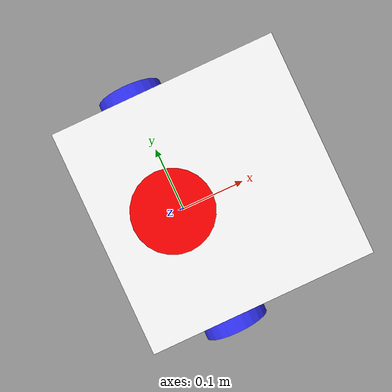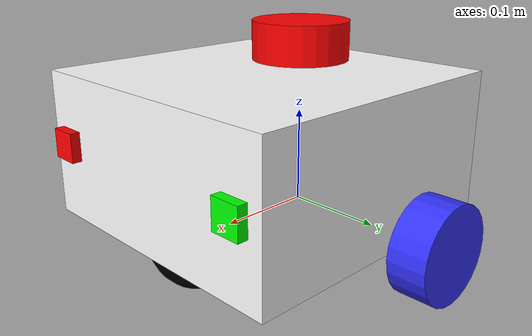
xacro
<?xml version="1.0"?>
<robot xmlns:xacro="http://www.ros.org/wiki/xacro"  name="robot">

    <xacro:arg name="use_ros2_control" default="true" />
    <xacro:arg name="gpu" default="false"/>
    <xacro:property name="gpu" value="$(arg gpu)" />

    <!-- CHASSIS AND WHEELS -->
    <xacro:include filename="robot_core.xacro" />

    <!-- LiDAR-->
    <xacro:include filename="lidar.xacro" />

    <!-- CAMERA -->
    <xacro:include filename="camera.xacro" />

    <!-- CONTROL -->

    <xacro:if value="$(arg use_ros2_control)" >
        <xacro:include filename="ros2_control.xacro" />
    </xacro:if>

    <xacro:unless value="$(arg use_ros2_control)" >
        <xacro:include filename="gazebo_control.xacro" />
    </xacro:unless>

</robot>

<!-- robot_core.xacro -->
<robot xmlns:xacro="http://www.ros.org/wiki/xacro">

    <xacro:include filename="materials.xacro" />
    <xacro:include filename="inertial_macros.xacro" />

    <!-- BASE LINK -->

    <link name="base_link">

    </link>

    <joint name="base_footprint_joint" type="fixed">
        <parent link="base_link" />
        <child link="base_footprint" />
        <origin xyz="0 0 0" rpy="0 0 0" />
    </joint>

    <link name="base_footprint">

    </link>

    <!-- CHASSIS LINK -->

    <joint name="chassis_joint" type="fixed" >
        <parent link="base_link" />
        <child link="chassis_link" />
        <origin xyz="-0.1 0 0" />
    </joint>

    <link name="chassis_link">
        <visual>
            <origin xyz="0.15 0 0.075" />
            <geometry>
                <box size="0.3 0.3 0.15" />
            </geometry>
            <material name="white" />
        </visual>
        <collision>
            <origin xyz="0.15 0 0.075" />
            <geometry>
                <box size="0.3 0.3 0.15" />
            </geometry>
        </collision>
        <xacro:inertial_box mass="1.5" x="0.3" y="0.3" z="0.15">
            <origin xyz="0.15 0 0.075" rpy="0 0 0" />
        </xacro:inertial_box>
    </link>

    <gazebo reference="chassis_link">
        <material>Gazebo/White</material>
    </gazebo>

    <!-- LEFT WHEEL LINK -->

    <joint name="left_wheel_joint" type="continuous">
        <parent link="base_link" />
        <child link="left_wheel_link" />
        <origin xyz="0 0.175 0" rpy="-${pi/2} 0 0" />
        <axis xyz="0 0 1" />
    </joint>

    <link name="left_wheel_link">
        <visual>
            <geometry>
                <cylinder radius="0.05" length="0.04" />
            </geometry>
            <material name="blue" />
        </visual>
        <collision>
            <geometry>
                <sphere radius="0.05" />
            </geometry>
        </collision>
        <xacro:inertial_cylinder mass="0.1" length="0.4" radius="0.5">
            <origin xyz="0 0 0" rpy="0 0 0" />
        </xacro:inertial_cylinder>
    </link>

    <gazebo reference="left_wheel_link">
        <material>Gazebo/Blue</material>
    </gazebo>

    <!-- RIGHT WHEEL LINK -->

    <joint name="right_wheel_joint" type="continuous">
        <parent link="base_link" />
        <child link="right_wheel_link" />
        <origin xyz="0 -0.175 0" rpy="-${pi/2} 0 0" />
        <axis xyz="0 0 1" />
    </joint>

    <link name="right_wheel_link">
        <visual>
            <geometry>
                <cylinder radius="0.05" length="0.04" />
            </geometry>
            <material name="blue" />
        </visual>
        <collision>
            <geometry>
                <sphere radius="0.05" />
            </geometry>
        </collision>
        <xacro:inertial_cylinder mass="0.1" length="0.4" radius="0.5">
            <origin xyz="0 0 0" rpy="0 0 0" />
        </xacro:inertial_cylinder>
    </link>

    <gazebo reference="right_wheel_link">
        <material>Gazebo/Blue</material>
    </gazebo>

    <!-- CASTER WHEEL LINK -->

    <joint name="caster_wheel_joint" type="fixed">
        <parent link="chassis_link" />
        <child link="caster_wheel_link" />
        <origin xyz="0.24 0 0" />
    </joint>

    <link name="caster_wheel_link">
        <visual>
            <geometry>
                <sphere radius="0.05" />
            </geometry>
            <material name="black" />
        </visual>
        <collision>
            <geometry>
                <sphere radius="0.05" />
            </geometry>
        </collision>
        <xacro:inertial_sphere mass="0.1" radius="0.05">
            <origin xyz="0 0 0" rpy="0 0 0" />
        </xacro:inertial_sphere>
    </link>

    <gazebo reference="caster_wheel_link">
        <material>Gazebo/Black</material>
        <mu1 value="0.001"/>
        <mu2 value="0.001"/>
    </gazebo>

</robot>

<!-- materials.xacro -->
<robot xmlns:xacro="http://www.ros.org/wiki/xacro">

    <material name="white">
        <color rgba="1 1 1 1" />
    </material>

    <material name="orange">
        <color rgba="1 0.3 0.1 1" />
    </material>

    <material name="blue">
        <color rgba="0.2 0.2 1 1" />
    </material>

    <material name="black">
        <color rgba="0 0 0 1" />
    </material>

    <material name="red">
        <color rgba="1 0 0 1" />
    </material>

    <material name="green">
        <color rgba="0 1 0 1" />
    </material>

</robot>

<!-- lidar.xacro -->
<robot xmlns:xacro="http://www.ros.org/wiki/xacro" >

    <!-- LASER -->

    <joint name="laser_joint" type="fixed">
        <parent link="chassis_link" />
        <child link="laser_frame" />
        <origin xyz="0.1 0 0.175" rpy="0 0 0" />
    </joint>

    <link name="laser_frame">
        <visual>
            <geometry>
                <cylinder radius="0.05" length="0.04"/>
            </geometry>
            <material name="red"/>
        </visual>
        <collision>
            <geometry>
                <cylinder radius="0.05" length="0.04"/>
            </geometry>
        </collision>
        <xacro:inertial_cylinder mass="0.1" length="0.04" radius="0.05">
            <origin xyz="0 0 0" rpy="0 0 0"/>
        </xacro:inertial_cylinder>
    </link>

    <gazebo reference="laser_frame">
        <material>Gazebo/Red</material>

        <sensor name="laser" type="ray">
            <pose> 0 0 0 0 0 0 </pose>
            <visualize>true</visualize>
            <update_rate>10</update_rate>
            <ray>
                <scan>
                    <horizontal>
                        <samples>360</samples>
                        <min_angle>-3.14</min_angle>
                        <max_angle>3.14</max_angle>
                    </horizontal>
                </scan>
                <range>
                    <min>0.3</min>
                    <max>12</max>
                </range>
            </ray>
            <plugin name="laser_controller" filename="libgazebo_ros_ray_sensor.so">
                <ros>
                    <argument>~/out:=scan</argument>
                </ros>
                <output_type>sensor_msgs/LaserScan</output_type>
                <frame_name>laser_frame</frame_name>
            </plugin>
        </sensor>
    </gazebo>

</robot>

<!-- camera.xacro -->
<robot xmlns:xacro="http://www.ros.org/wiki/xacro" >

    <!-- RIGHT CAMERA -->

    <joint name="right_camera_joint" type="fixed">
        <parent link="chassis_link" />
        <child link="right_camera_link" />
        <origin xyz="0.305 -0.12 0.08" rpy="0 0 0" />
    </joint>

    <link name="right_camera_link">
        <visual>
            <geometry>
                <box size="0.010 0.03 0.03" />
            </geometry>
            <material name="red"/>
        </visual>
    </link>

    <joint name="right_camera_optical_joint" type="fixed">
        <parent link="right_camera_link" />
        <child link="right_camera_link_optical" />
        <origin xyz="0 0 0" rpy="-${pi/2} 0 -${pi/2}" />
    </joint>

    <link name="right_camera_link_optical"></link>

    <gazebo reference="right_camera_link">
        <material>Gazebo/Red</material>

        <sensor name="right_camera" type="camera">
            <pose> 0 0 0 0 0 0 </pose>
            <visualize>false</visualize>
            <update_rate>10</update_rate>
            <camera>
                <horizontal_fov>1.089</horizontal_fov>
                <image>
                    <format>R8G8B8</format>
                    <width>640</width>
                    <height>480</height>
                </image>
                <clip>
                    <near>0.05</near>
                    <far>8.0</far>
                </clip>
            </camera>
            <plugin name="right_camera_controller" filename="libgazebo_ros_camera.so">
                <frame_name>right_camera_link_optical</frame_name>
            </plugin>
        </sensor>
    </gazebo>

    <!-- LEFT CAMERA -->

    <joint name="left_camera_joint" type="fixed">
        <parent link="chassis_link" />
        <child link="left_camera_link" />
        <origin xyz="0.305 0.12 0.08" rpy="0 0 0" />
    </joint>

    <link name="left_camera_link">
        <visual>
            <geometry>
                <box size="0.010 0.03 0.03" />
            </geometry>
            <material name="green"/>
        </visual>
    </link>

    <joint name="left_camera_optical_joint" type="fixed">
        <parent link="left_camera_link" />
        <child link="left_camera_link_optical" />
        <origin xyz="0 0 0" rpy="-${pi/2} 0 -${pi/2}" />
    </joint>

    <link name="left_camera_link_optical"></link>

    <gazebo reference="left_camera_link">
        <material>Gazebo/Green</material>

        <sensor name="left_camera" type="camera">
            <pose> 0 0 0 0 0 0 </pose>
            <visualize>false</visualize>
            <update_rate>10</update_rate>
            <camera>
                <horizontal_fov>1.089</horizontal_fov>
                <image>
                    <format>R8G8B8</format>
                    <width>640</width>
                    <height>480</height>
                </image>
                <clip>
                    <near>0.05</near>
                    <far>8.0</far>
                </clip>
            </camera>
            <plugin name="left_camera_controller" filename="libgazebo_ros_camera.so">
                <frame_name>left_camera_link_optical</frame_name>
            </plugin>
        </sensor>
    </gazebo>

</robot>
